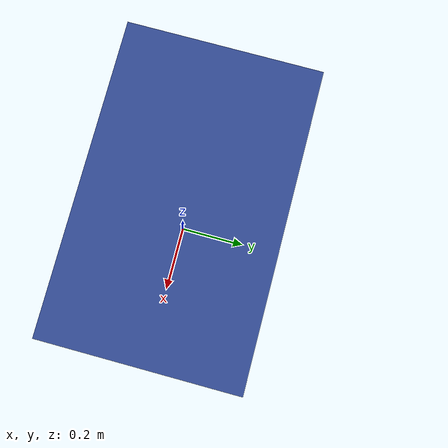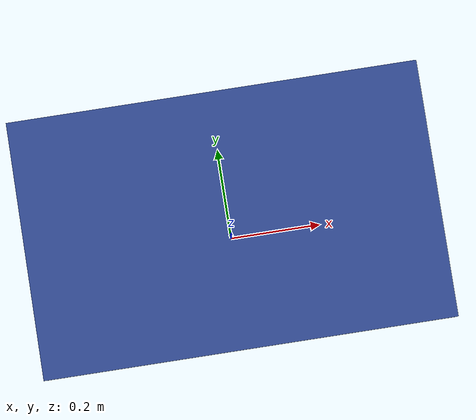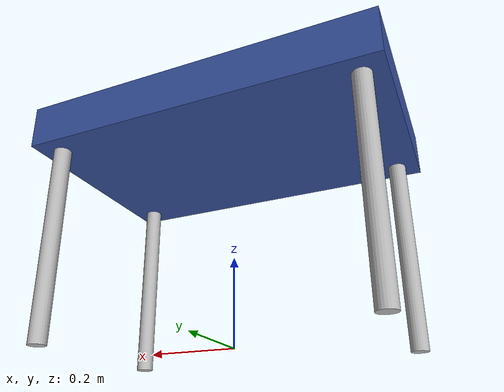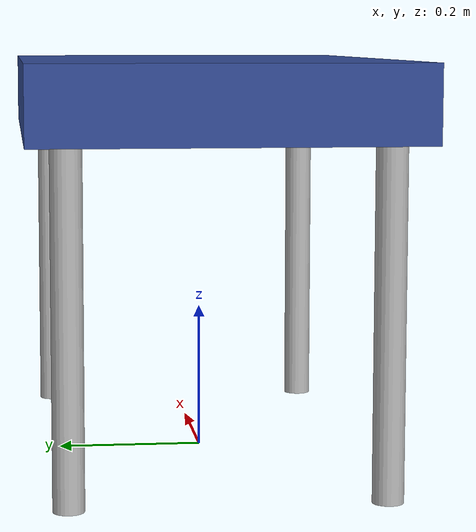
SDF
<?xml version="1.0" ?>
<!-- Copyright 2026 amr-sim-lab contributors. Apache-2.0. See LICENSE. -->
<sdf version="1.10">
  <model name="cart">
    <link name="body">
      <inertial>
        <mass>20.0</mass>
        <inertia>
          <ixx>1.2</ixx><iyy>1.7</iyy><izz>2.4</izz>
          <ixy>0</ixy><ixz>0</ixz><iyz>0</iyz>
        </inertia>
      </inertial>
      <collision name="deck">
        <pose>0 0 0.5 0 0 0</pose>
        <geometry><box><size>0.8 0.5 0.1</size></box></geometry>
      </collision>
      <visual name="deck">
        <pose>0 0 0.5 0 0 0</pose>
        <geometry><box><size>0.8 0.5 0.1</size></box></geometry>
        <material><ambient>0.2 0.3 0.6 1</ambient><diffuse>0.2 0.3 0.6 1</diffuse></material>
      </visual>
      <visual name="post_fl"><pose>0.35 0.2 0.25 0 0 0</pose>
        <geometry><cylinder><radius>0.02</radius><length>0.5</length></cylinder></geometry></visual>
      <visual name="post_fr"><pose>0.35 -0.2 0.25 0 0 0</pose>
        <geometry><cylinder><radius>0.02</radius><length>0.5</length></cylinder></geometry></visual>
      <visual name="post_bl"><pose>-0.35 0.2 0.25 0 0 0</pose>
        <geometry><cylinder><radius>0.02</radius><length>0.5</length></cylinder></geometry></visual>
      <visual name="post_br"><pose>-0.35 -0.2 0.25 0 0 0</pose>
        <geometry><cylinder><radius>0.02</radius><length>0.5</length></cylinder></geometry></visual>
      <collision name="legs">
        <pose>0 0 0.25 0 0 0</pose>
        <geometry><box><size>0.7 0.4 0.5</size></box></geometry>
      </collision>
    </link>
  </model>
</sdf>
